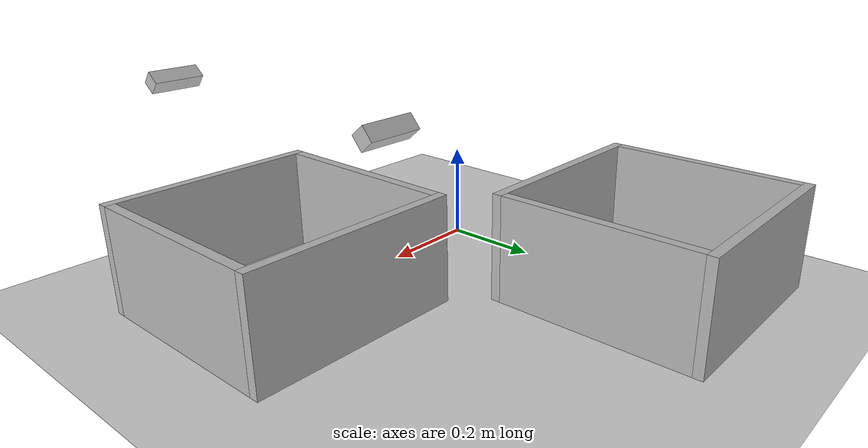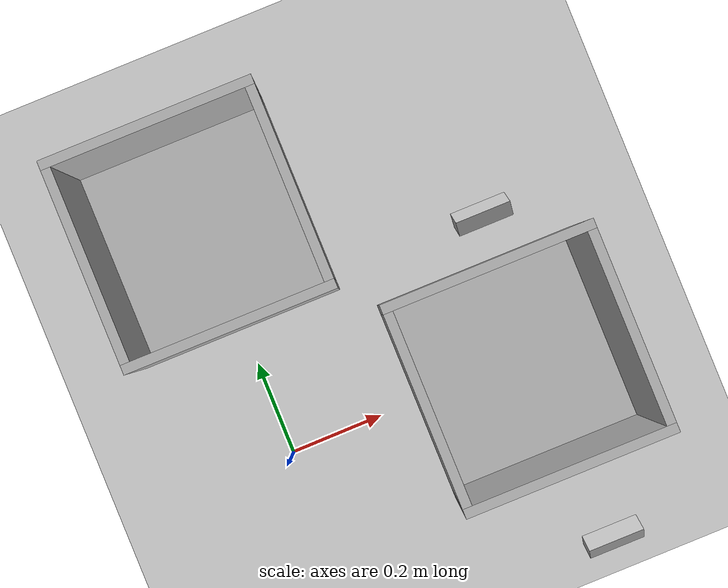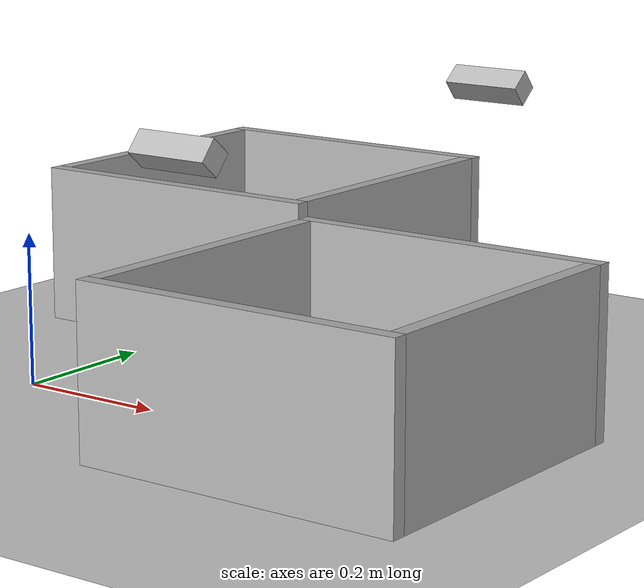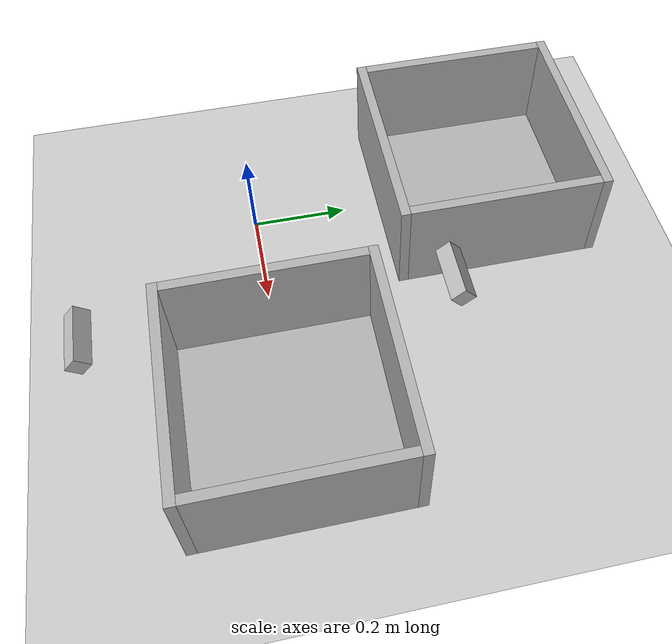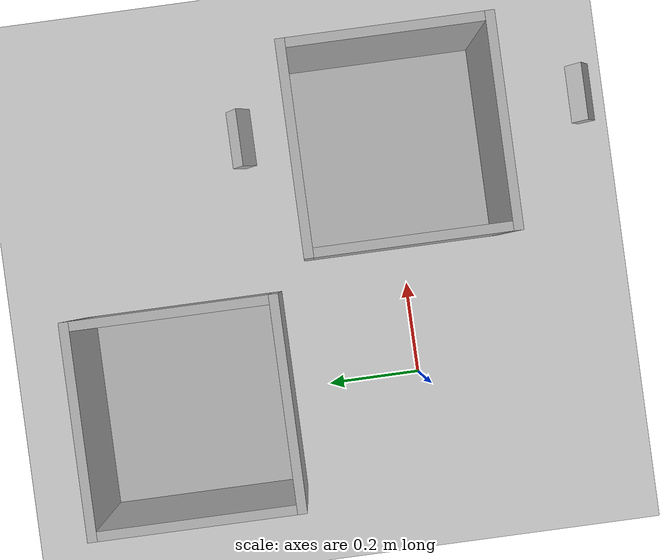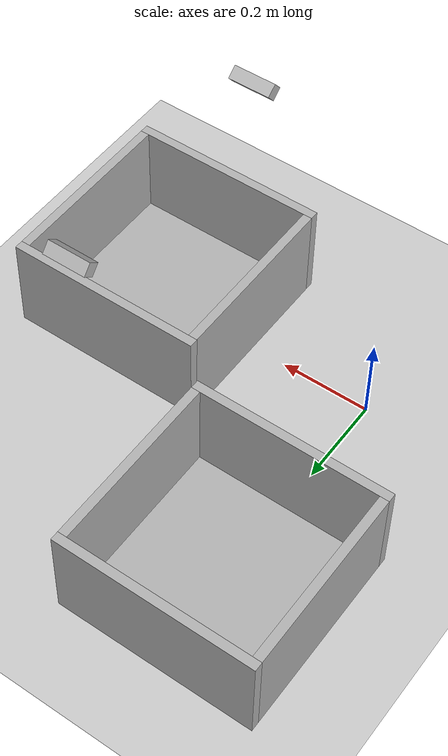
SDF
<?xml version='1.0' ?>
<sdf version='1.7'>
  <world name='default'>

    <plugin
      filename="gz-sim-physics-system"
      name="gz::sim::systems::Physics">
    </plugin>
    <plugin
      filename="gz-sim-user-commands-system"
      name="gz::sim::systems::UserCommands">
    </plugin>
    <plugin
      filename="gz-sim-scene-broadcaster-system"
      name="gz::sim::systems::SceneBroadcaster">
    </plugin>
    <plugin
      filename="gz-sim-sensors-system"
      name="gz::sim::systems::Sensors">
      <render_engine>ogre2</render_engine>
    </plugin>
    <plugin
      filename="gz-sim-imu-system"
      name="gz::sim::systems::Imu">
    </plugin>
    <plugin
      filename="gz-sim-contact-system"
      name="gz::sim::systems::Contact">
    </plugin>

    <scene>
      <shadows>false</shadows>
    </scene>

    <gui fullscreen='0'>
      <camera name='user_camera'>
        <pose frame=''>0.319654 -0.235002 9.29441 0 1.5138 0.009599</pose>
        <view_controller>orbit</view_controller>
        <projection_type>perspective</projection_type>
      </camera>
    </gui>

    <physics type="ode">
      <real_time_update_rate>500.0</real_time_update_rate>
      <max_step_size>0.002</max_step_size>
      <real_time_factor>1</real_time_factor>
      <ode>
        <solver>
          <type>quick</type>
          <iters>150</iters>
          <precon_iters>0</precon_iters>
          <sor>1.400000</sor>
          <use_dynamic_moi_rescaling>1</use_dynamic_moi_rescaling>
        </solver>
        <constraints>
          <cfm>0.00001</cfm>
          <erp>0.2</erp>
          <contact_max_correcting_vel>2000.000000</contact_max_correcting_vel>
          <contact_surface_layer>0.01000</contact_surface_layer>
        </constraints>
      </ode>
    </physics>

    <include>
      <uri>model://ground_plane</uri>
    </include>

    <include>
      <uri>model://sun</uri>
    </include>

    <include>
      <pose>0.5 0 0 0 0 0</pose>
      <uri>model://bin_tray</uri>
    </include>

    <include>
      <pose>0 0.5 0 0 0 0</pose>
      <uri>model://bin_tray</uri>
      <name>bin_tray_2</name>
    </include>

    <!-- Cameras around bin 1 at (0.5, 0.0) -->
    <model name="camera_bin1_left">
      <static>true</static>
      <pose>0.5 0.3 0.4 0.0 0.7 -1.57</pose> <!-- facing -Y toward bin center -->
      <link name="camera_link">
        <visual name="camera_visual">
          <geometry>
            <box><size>0.03 0.1 0.03</size></box>
          </geometry>
        </visual>
        <sensor name="rgbd_cam_bin1_left" type="rgbd_camera">
          <always_on>true</always_on>
          <update_rate>1</update_rate>
          <camera>
            <horizontal_fov>1.047</horizontal_fov>
            <image><width>500</width><height>500</height></image>
            <clip><near>0.1</near><far>2.0</far></clip>
          </camera>
          <depth_camera>
            <min_depth>0.1</min_depth>
            <max_depth>3.0</max_depth>
          </depth_camera>
          <visualize>true</visualize>
          <topic>/bin1/left/camera</topic>
          <gz_frame_id>bin1_cam_left</gz_frame_id>
        </sensor>
      </link>
    </model>

    <model name="camera_bin1_right">
      <static>true</static>
      <pose>0.5 -0.3 0.4 0.0 0.7 1.57</pose> <!-- facing +Y toward bin center -->
      <link name="camera_link">
        <visual name="camera_visual">
          <geometry>
            <box><size>0.03 0.1 0.03</size></box>
          </geometry>
        </visual>
        <sensor name="rgbd_cam_bin1_right" type="rgbd_camera">
          <always_on>true</always_on>
          <update_rate>1</update_rate>
          <camera>
            <horizontal_fov>1.047</horizontal_fov>
            <image><width>500</width><height>500</height></image>
            <clip><near>0.1</near><far>2.0</far></clip>
          </camera>
          <depth_camera>
            <min_depth>0.1</min_depth>
            <max_depth>3.0</max_depth>
          </depth_camera>
          <visualize>true</visualize>
          <topic>/bin1/right/camera</topic>
          <gz_frame_id>bin1_cam_right</gz_frame_id>
        </sensor>
      </link>
    </model>

    <!-- Cameras around bin 2 at (0.0, 0.5) -->

  </world>
</sdf>

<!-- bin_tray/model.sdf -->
<sdf version="1.6">
  <model name="bin_tray">
    <static>true</static>

    <!-- Bin bottom -->
    <link name="bottom">
      <pose>0 0 0 0 0 0</pose>
      <visual name="bottom_visual">
        <geometry>
          <box>
            <size>0.4 0.4 0.02</size>
          </box>
        </geometry>
        <material>
          <ambient>0.7 0.7 0.7 1</ambient>
          <diffuse>0.7 0.7 0.7 1</diffuse>
        </material>
      </visual>
      <collision name="bottom_collision">
        <geometry>
          <box>
            <size>0.4 0.4 0.02</size>
          </box>
        </geometry>
        <surface>
          <friction>
            <ode>
              <mu>0.5</mu>
              <mu2>0.5</mu2>
            </ode>
          </friction>
          <bounce>
            <restitution_coefficient>0.1</restitution_coefficient>
          </bounce>
        </surface>
      </collision>
    </link>

    <!-- Bin sides -->
    <link name="side_1">
      <pose>0.21 0 0.11 0 0 0</pose>
      <visual name="side_1_visual">
        <geometry>
          <box>
            <size>0.02 0.4 0.22</size>
          </box>
        </geometry>
        <material>
          <ambient>0.7 0.7 0.7 1</ambient>
          <diffuse>0.7 0.7 0.7 1</diffuse>
        </material>
      </visual>
      <collision name="side_1_collision">
        <geometry>
          <box>
            <size>0.02 0.4 0.22</size>
          </box>
        </geometry>
        <surface>
          <friction>
            <ode>
              <mu>0.5</mu>
              <mu2>0.5</mu2>
            </ode>
          </friction>
          <bounce>
            <restitution_coefficient>0.1</restitution_coefficient>
          </bounce>
        </surface>
      </collision>
    </link>

    <link name="side_2">
      <pose>-0.21 0 0.11 0 0 0</pose>
      <visual name="side_2_visual">
        <geometry>
          <box>
            <size>0.02 0.4 0.22</size>
          </box>
        </geometry>
        <material>
          <ambient>0.7 0.7 0.7 1</ambient>
          <diffuse>0.7 0.7 0.7 1</diffuse>
        </material>
      </visual>
      <collision name="side_2_collision">
        <geometry>
          <box>
            <size>0.02 0.4 0.22</size>
          </box>
        </geometry>
        <surface>
          <friction>
            <ode>
              <mu>0.5</mu>
              <mu2>0.5</mu2>
            </ode>
          </friction>
          <bounce>
            <restitution_coefficient>0.1</restitution_coefficient>
          </bounce>
        </surface>
      </collision>
    </link>

    <link name="side_3">
      <pose>0 0.21 0.11 0 0 0</pose>
      <visual name="side_3_visual">
        <geometry>
          <box>
            <size>0.44 0.02 0.22</size>
          </box>
        </geometry>
        <material>
          <ambient>0.7 0.7 0.7 1</ambient>
          <diffuse>0.7 0.7 0.7 1</diffuse>
        </material>
      </visual>
      <collision name="side_3_collision">
        <geometry>
          <box>
            <size>0.44 0.02 0.22</size>
          </box>
        </geometry>
        <surface>
          <friction>
            <ode>
              <mu>0.5</mu>
              <mu2>0.5</mu2>
            </ode>
          </friction>
          <bounce>
            <restitution_coefficient>0.1</restitution_coefficient>
          </bounce>
        </surface>
      </collision>
    </link>

    <link name="side_4">
      <pose>0 -0.21 0.11 0 0 0</pose>
      <visual name="side_4_visual">
        <geometry>
          <box>
            <size>0.44 0.02 0.22</size>
          </box>
        </geometry>
        <material>
          <ambient>0.7 0.7 0.7 1</ambient>
          <diffuse>0.7 0.7 0.7 1</diffuse>
        </material>
      </visual>
      <collision name="side_4_collision">
        <geometry>
          <box>
            <size>0.44 0.02 0.22</size>
          </box>
        </geometry>
        <surface>
          <friction>
            <ode>
              <mu>0.5</mu>
              <mu2>0.5</mu2>
            </ode>
          </friction>
          <bounce>
            <restitution_coefficient>0.1</restitution_coefficient>
          </bounce>
        </surface>
      </collision>
    </link>
  </model>
</sdf>
